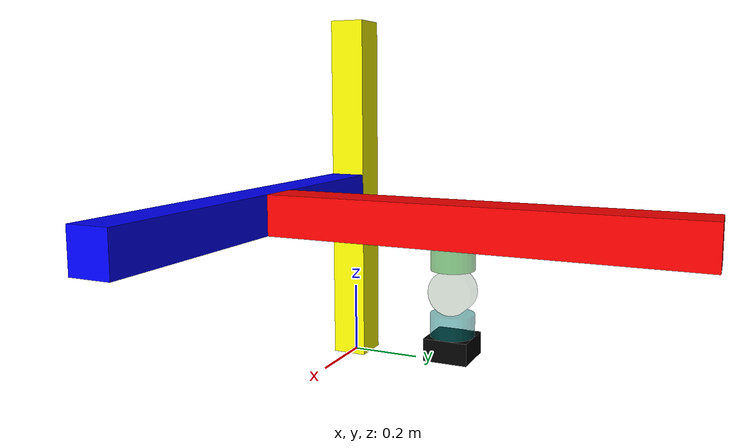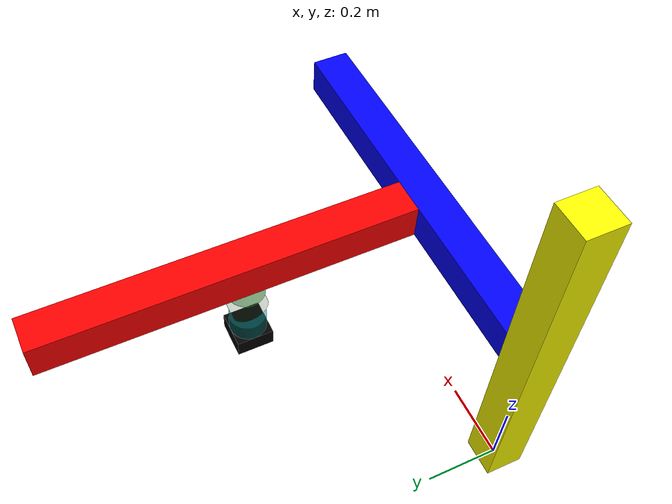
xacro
<?xml version='1.0'?>

<robot name="tryrobot" xmlns:xacro="http://www.ros.org/wiki/xacro">

  <xacro:include filename="$(find trybot_description)/urdf/trybot.gazebo" />

  <!-- ******************* WORLD LINK ******************* -->
  <link name="world" />

  <!-- ********************* AXIS-1 ********************* -->
  <link name="axis1">
  	<visual>
	  <origin xyz="0 0 0.5" rpy="0 0 0" />
  	  <geometry>
        <box size="0.1 0.1 1.0"/>
  	  </geometry>
			<material name="yellow">
  		<color rgba="1 1 0 1" />
  	  </material>
  	</visual>

	<inertial>
	  <mass value="0.1405"/>
	  <inertia
		  ixx="0.011825416666666668" ixy="0.0" ixz="0.0"
		  iyy="0.00023416666666666673" iyz="0.0"
		  izz="0.011825416666666668"/>
	</inertial>

	<collision>
	  <origin xyz="0 0 0.5" rpy="0 0 0" />
	  <geometry>
      <box size="0.1 0.1 1.0"/>
	  </geometry>
	</collision>
  </link>

  <!-- ********************* AXIS-2 ********************* -->
  <link name="axis2">
  	<visual>
	  <origin xyz="-0.5 0 0.05" rpy="0 0 0" />
  	  <geometry>
        <box size="0.1 0.1 1.0"/>
  	  </geometry>
  	  <material name="blue">
  		<color rgba="0 0 1 1" />
  	  </material>
  	</visual>

	<inertial>
	  <mass value="0.1405"/>
	  <inertia
		  ixx="0.011825416666666668" ixy="0.0" ixz="0.0"
		  iyy="0.00023416666666666673" iyz="0.0"
		  izz="0.011825416666666668"/>
	</inertial>

	<collision>
	  <origin xyz="-0.5 0 0.06" rpy="0 0 0" />
	  <geometry>
      <box size="0.1 0.1 1.0"/>
	  </geometry>
	</collision>
  </link>

  <!-- ********************* AXIS-3 ********************* -->
  <link name="axis3">
  	<visual>
	  <origin xyz="-0.5 0 -0.05" rpy="0 0 0" />
  	  <geometry>
        <box size="0.1 0.1 1.0"/>
  	  </geometry>
  	  <material name="red">
  		<color rgba="1 0 0 1" />
  	  </material>
  	</visual>

	<inertial>
	  <mass value="0.1405"/>
	  <inertia
		  ixx="0.011825416666666668" ixy="0.0" ixz="0.0"
		  iyy="0.00023416666666666673" iyz="0.0"
		  izz="0.011825416666666668"/>
	</inertial>

	<collision>
	  <origin xyz="-0.5 0 -0.06" rpy="0 0 0" />
	  <geometry>
      <box size="0.1 0.1 1.0"/>
	  </geometry>
	</collision>
  </link>

 <!-- ********************* AXIS-4 ********************* -->
  <link name="axis4">
  	<visual>
      <origin xyz="0 0 0" rpy="0 0 0" />
      <geometry>
        <cylinder radius="0.05" length="0.05" />
      </geometry>
      <material name="greyGreen">
      <color rgba="0 0.5 0 0.5" />
      </material>
  	</visual>

	<inertial>
	  <mass value="0.028100"/>
	  <inertia
		  ixx="0.00011708" ixy="0.0" ixz="0.0"
		  iyy="0.000046833" iyz="0.0"
		  izz="0.00011708"/>
	</inertial>

	<collision>
	  <origin xyz="0 0 0" rpy="0 0 0" />
    <geometry>
      <cylinder radius="0.05" length="0.05" />
    </geometry>
	</collision>
  </link>

 <!-- ********************* AXIS-5 ********************* -->
  <link name="axis5">
  	<visual>
      <origin xyz="0 0 0" rpy="0 0 0" />
      <geometry>
        <cylinder radius="0.05" length="0.05" />
      </geometry>
      <material name="darkGreen">
      <color rgba="0 0.2 0 0.2" />
      </material>
  	</visual>

	<inertial>
	  <mass value="0.028100"/>
	  <inertia
		  ixx="0.00011708" ixy="0.0" ixz="0.0"
		  iyy="0.000046833" iyz="0.0"
		  izz="0.00011708"/>
	</inertial>

	<collision>
	  <origin xyz="0 0 0" rpy="0 0 0" />
    <geometry>
      <cylinder radius="0.05" length="0.05" />
    </geometry>
	</collision>
  </link>

 <!-- ********************* AXIS-6 ********************* -->
  <link name="axis6">
  	<visual>
      <origin xyz="0 0 0" rpy="0 0 0" />
      <geometry>
        <cylinder radius="0.05" length="0.05" />
      </geometry>
      <material name="grey">
      <color rgba="0 0.5 0.5 0.5" />
      </material>
  	</visual>

	<inertial>
	  <mass value="0.028100"/>
	  <inertia
		  ixx="0.00011708" ixy="0.0" ixz="0.0"
		  iyy="0.000046833" iyz="0.0"
		  izz="0.00011708"/>
	</inertial>

	<collision>
	  <origin xyz="0 0 0" rpy="0 0 0" />
    <geometry>
      <cylinder radius="0.05" length="0.05" />
    </geometry>
	</collision>
  </link>

 <!-- ********************* FLANGE ********************* -->
  <link name="flange">
  	<visual>
      <origin xyz="0 0 0" rpy="0 0 0" />
      <geometry>
        <box size="0.1 0.1 0.05"/>
        <!--cylinder radius="0.055" length="0.05" /-->
      </geometry>
      <material name="black">
      <color rgba="0 0 0 0" />
      </material>
  	</visual>

	<inertial>
	  <mass value="0.028100"/>
	  <inertia
		  ixx="0.00011708" ixy="0.0" ixz="0.0"
		  iyy="0.000046833" iyz="0.0"
		  izz="0.00011708"/>
	</inertial>

	<collision>
	  <origin xyz="0 0 0" rpy="0 0 0" />
    <geometry>
      <cylinder radius="0.05" length="0.05" />
    </geometry>
	</collision>
  </link>

  <!-- ********************* JOINTS ********************* -->

  <joint name="world_joint"  type="fixed">
  	<origin xyz="0 0 0" rpy="0 0 0" />
    <parent link="world"/>
    <child link="axis1"/>
  </joint>

  <joint name="joint1" type="prismatic">
    <limit lower="-0.45" upper="0.45" effort="12" velocity="2.443"/>
  	<parent link="axis1" />
  	<child link="axis2" />
    <origin xyz="0.5 0 0" rpy="0 1.570796 0"/>
    <axis xyz="-1 0 0" />
  </joint>

	<joint name="joint_2" type="prismatic">
    <limit lower="-0.4" upper="0.5" effort="12" velocity="2.443"/>
  	<parent link="axis2" />
  	<child link="axis3" />
    <origin xyz="0 0.5 0.0" rpy="1.570796 0 0"/>
    <axis xyz="0 1 0" />
  </joint>

	<joint name="joint_3" type="prismatic">
    <limit lower="-0.3" upper="0.5" effort="12" velocity="2.443"/>
  	<parent link="axis3" />
  	<child link="axis4" />
    <origin xyz="-0.425 0 0" rpy="0 1.570796 0"/>
    <axis xyz="1 0 0"/>
  </joint>

  <joint name="joint_4" type="revolute">
    <limit lower="-3.14" upper="3.14" effort="12" velocity="2.443"/>
  	<parent link="axis4" />
  	<child link="axis5" />
    <origin xyz="0 0 0.075" rpy="0 1.570796 1.570796"/>
    <axis xyz="0 1 0" />
  </joint>

  <joint name="joint_5" type="revolute">
    <limit lower="-3.14" upper="3.14" effort="12" velocity="2.443"/>
  	<parent link="axis5" />
  	<child link="axis6" />
    <origin xyz="-0.075 0 0" rpy="0 1.570796 0"/>
    <axis xyz="1 0 0" />
  </joint>

  <joint name="joint_6" type="revolute">
    <limit lower="-3.14" upper="3.14" effort="12" velocity="2.443"/>
  	<parent link="axis6" />
  	<child link="flange" />
    <origin xyz="0 0 -0.05" rpy="0 0 0"/>
    <axis xyz="0 0 1" />
  </joint>

  <!-- ************* ACTUATOR TRANSMISSIONS ************* -->

	<transmission name="joint1_trans">
		<type>transmission_interface/SimpleTransmission</type>
		<joint name="joint1">
			<hardwareInterface>hardware_interface/EffortJointInterface</hardwareInterface>
		</joint>
		<actuator name="joint1_motor">
			<mechanicalReduction>50</mechanicalReduction>
		</actuator>
	</transmission>

  <transmission name="joint_2_trans">
    <type>transmission_interface/SimpleTransmission</type>
    <joint name="joint_2">
      <hardwareInterface>hardware_interface/EffortJointInterface</hardwareInterface>
    </joint>
    <actuator name="joint_2_motor">
      <mechanicalReduction>50</mechanicalReduction>
    </actuator>
  </transmission>

  <transmission name="joint_3_trans">
    <type>transmission_interface/SimpleTransmission</type>
    <joint name="joint_3">
      <hardwareInterface>hardware_interface/EffortJointInterface</hardwareInterface>
    </joint>
    <actuator name="joint_3_motor">
      <mechanicalReduction>50</mechanicalReduction>
    </actuator>
  </transmission>

  <!-- ********************* GAZEBO ********************* -->

</robot>
